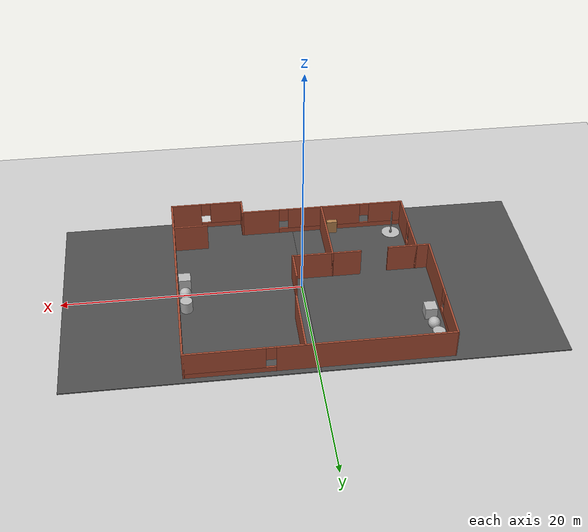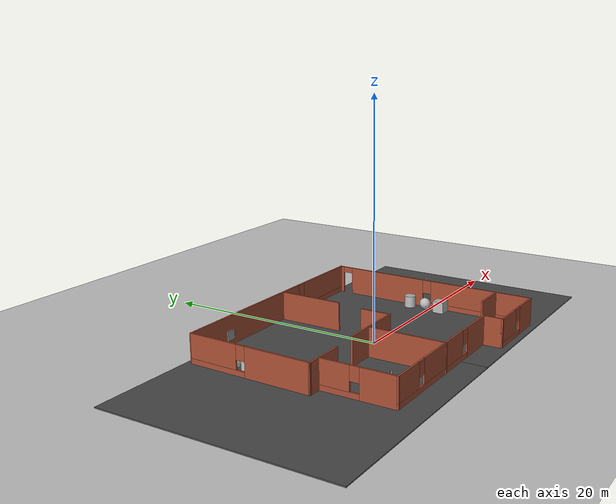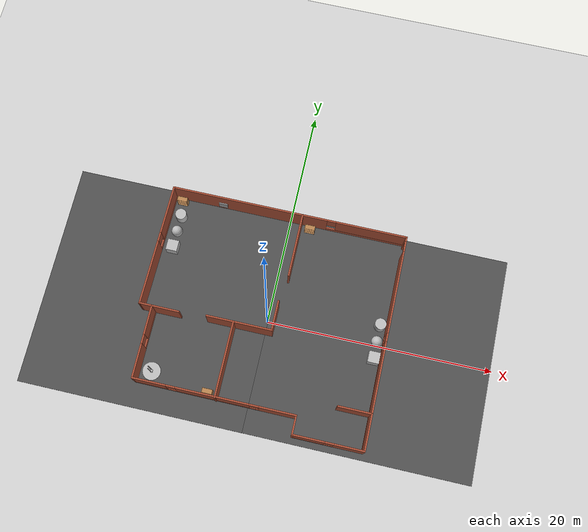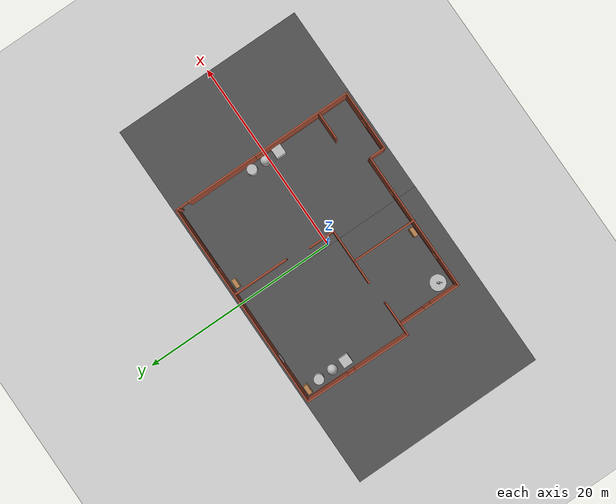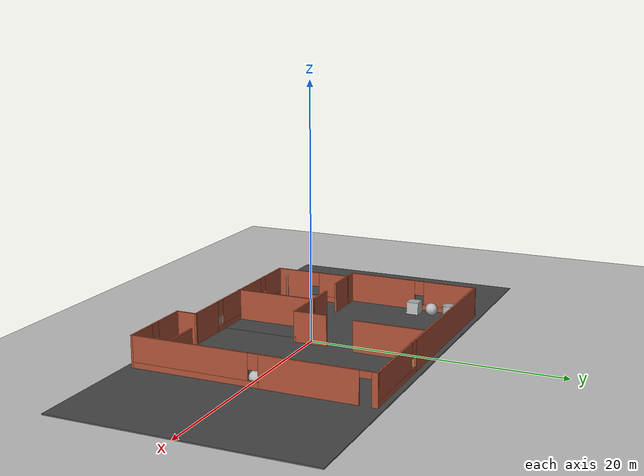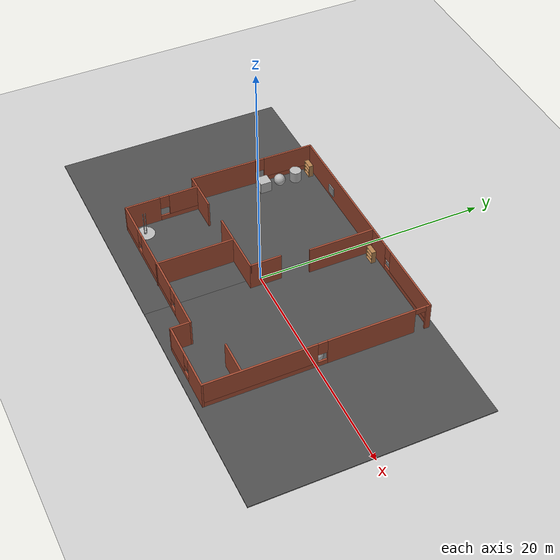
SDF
<sdf version="1.6">
 <world name="default">
  <light name="sun" type="directional">
   <pose>0 0 15 0 -0 0</pose>
   <diffuse>1 1 1 1</diffuse>
   <specular>0.1 0.1 0.1 1</specular>
   <attenuation>
    <range>1000</range>
    <constant>0.9</constant>
    <linear>0.01</linear>
    <quadratic>0.001</quadratic>
   </attenuation>
   <direction>-0.5 0.5 -1</direction>
  </light>
  <model name="ground_plane">
   <static>1</static>
   <link name="link">
    <collision name="collision">
     <geometry><plane><normal>0 0 1</normal><size>100 100</size></plane></geometry>
     <surface><friction><ode><mu>100</mu><mu2>50</mu2></ode></friction></surface>
    </collision>
    <visual name="visual">
     <cast_shadows>0</cast_shadows>
     <geometry><plane><normal>0 0 1</normal><size>100 100</size></plane></geometry>
     <material>
      <script><uri>file://media/materials/scripts/gazebo.material</uri><name>Gazebo/Grey</name></script>
     </material>
    </visual>
   </link>
  </model>
  <gravity>0 0 -9.8</gravity>
  <magnetic_field>6e-06 2.3e-05 -4.2e-05</magnetic_field>
  <atmosphere type="adiabatic"/>
  <physics name="default_physics" default="0" type="ode">
   <max_step_size>0.001</max_step_size>
   <real_time_factor>1</real_time_factor>
   <real_time_update_rate>1000</real_time_update_rate>
  </physics>
  <scene><ambient>0.4 0.4 0.4 1</ambient><background>0.7 0.7 0.7 1</background><shadows>1</shadows></scene>
  <spherical_coordinates>
   <surface_model>EARTH_WGS84</surface_model>
   <latitude_deg>0</latitude_deg>
   <longitude_deg>0</longitude_deg>
   <elevation>0</elevation>
   <heading_deg>0</heading_deg>
  </spherical_coordinates>
  <model name="model_house2">
   <pose>-0.306793 0.18905 0 0 -0 0</pose>
   <link name="Wall_0">
    <pose>0.100682 9.42432 0 0 -0 0</pose>
    <visual name="Wall_0_Visual_0">
     <pose>-3.59388 0 1.25 0 -0 0</pose>
     <geometry><box><size>14.0622 0.15 2.5</size></box></geometry>
     <material>
      <script><uri>file://media/materials/scripts/gazebo.material</uri><name>Gazebo/Bricks</name></script>
      <ambient>1 1 1 1</ambient>
     </material>
    </visual>
    <collision name="Wall_0_Collision_0">
     <geometry><box><size>14.0622 0.15 2.5</size></box></geometry>
     <pose>-3.59388 0 1.25 0 -0 0</pose>
    </collision>
    <visual name="Wall_0_Visual_1">
     <pose>7.03112 0 0.25 0 -0 0</pose>
     <geometry><box><size>7.18776 0.15 0.5</size></box></geometry>
     <material>
      <script><uri>file://media/materials/scripts/gazebo.material</uri><name>Gazebo/Bricks</name></script>
      <ambient>1 1 1 1</ambient>
     </material>
    </visual>
    <collision name="Wall_0_Collision_1">
     <geometry><box><size>7.18776 0.15 0.5</size></box></geometry>
     <pose>7.03112 0 0.25 0 -0 0</pose>
    </collision>
    <visual name="Wall_0_Visual_2">
     <pose>7.43112 0 1.5 0 -0 0</pose>
     <geometry><box><size>6.38776 0.15 2</size></box></geometry>
     <material>
      <script><uri>file://media/materials/scripts/gazebo.material</uri><name>Gazebo/Bricks</name></script>
      <ambient>1 1 1 1</ambient>
     </material>
    </visual>
    <collision name="Wall_0_Collision_2">
     <geometry><box><size>6.38776 0.15 2</size></box></geometry>
     <pose>7.43112 0 1.5 0 -0 0</pose>
    </collision>
    <visual name="Wall_0_Visual_3">
     <pose>3.83724 0 1.9 0 -0 0</pose>
     <geometry><box><size>0.8 0.15 1.2</size></box></geometry>
     <material>
      <script><uri>file://media/materials/scripts/gazebo.material</uri><name>Gazebo/Bricks</name></script>
      <ambient>1 1 1 1</ambient>
     </material>
    </visual>
    <collision name="Wall_0_Collision_3">
     <geometry><box><size>0.8 0.15 1.2</size></box></geometry>
     <pose>3.83724 0 1.9 0 -0 0</pose>
    </collision>
   </link>
   <link name="Wall_1">
    <pose>10.6507 -0.000681 0 0 0 -1.5708</pose>
    <visual name="Wall_1_Visual_0">
     <pose>-9.27115 0 1.25 0 -0 0</pose>
     <geometry><box><size>0.457701 0.15 2.5</size></box></geometry>
     <material>
      <script><uri>file://media/materials/scripts/gazebo.material</uri><name>Gazebo/Bricks</name></script>
      <ambient>1 1 1 1</ambient>
     </material>
    </visual>
    <collision name="Wall_1_Collision_0">
     <geometry><box><size>0.457701 0.15 2.5</size></box></geometry>
     <pose>-9.27115 0 1.25 0 -0 0</pose>
    </collision>
    <visual name="Wall_1_Visual_1">
     <pose>-4.42241 0 1.25 0 -0 0</pose>
     <geometry><box><size>7.43977 0.15 2.5</size></box></geometry>
     <material>
      <script><uri>file://media/materials/scripts/gazebo.material</uri><name>Gazebo/Bricks</name></script>
      <ambient>1 1 1 1</ambient>
     </material>
    </visual>
    <collision name="Wall_1_Collision_1">
     <geometry><box><size>7.43977 0.15 2.5</size></box></geometry>
     <pose>-4.42241 0 1.25 0 -0 0</pose>
    </collision>
    <visual name="Wall_1_Visual_2">
     <pose>4.39874 0 0.25 0 -0 0</pose>
     <geometry><box><size>10.2025 0.15 0.5</size></box></geometry>
     <material>
      <script><uri>file://media/materials/scripts/gazebo.material</uri><name>Gazebo/Bricks</name></script>
      <ambient>1 1 1 1</ambient>
     </material>
    </visual>
    <collision name="Wall_1_Collision_2">
     <geometry><box><size>10.2025 0.15 0.5</size></box></geometry>
     <pose>4.39874 0 0.25 0 -0 0</pose>
    </collision>
    <visual name="Wall_1_Visual_3">
     <pose>4.79874 0 1.5 0 -0 0</pose>
     <geometry><box><size>9.40253 0.15 2</size></box></geometry>
     <material>
      <script><uri>file://media/materials/scripts/gazebo.material</uri><name>Gazebo/Bricks</name></script>
      <ambient>1 1 1 1</ambient>
     </material>
    </visual>
    <collision name="Wall_1_Collision_3">
     <geometry><box><size>9.40253 0.15 2</size></box></geometry>
     <pose>4.79874 0 1.5 0 -0 0</pose>
    </collision>
    <visual name="Wall_1_Visual_4">
     <pose>-0.302527 0 1.9 0 -0 0</pose>
     <geometry><box><size>0.8 0.15 1.2</size></box></geometry>
     <material>
      <script><uri>file://media/materials/scripts/gazebo.material</uri><name>Gazebo/Bricks</name></script>
      <ambient>1 1 1 1</ambient>
     </material>
    </visual>
    <collision name="Wall_1_Collision_4">
     <geometry><box><size>0.8 0.15 1.2</size></box></geometry>
     <pose>-0.302527 0 1.9 0 -0 0</pose>
    </collision>
    <visual name="Wall_1_Visual_5">
     <pose>-8.5923 0 2.25 0 -0 0</pose>
     <geometry><box><size>0.9 0.15 0.5</size></box></geometry>
     <material>
      <script><uri>file://media/materials/scripts/gazebo.material</uri><name>Gazebo/Bricks</name></script>
      <ambient>1 1 1 1</ambient>
     </material>
    </visual>
    <collision name="Wall_1_Collision_5">
     <geometry><box><size>0.9 0.15 0.5</size></box></geometry>
     <pose>-8.5923 0 2.25 0 -0 0</pose>
    </collision>
   </link>
   <link name="Wall_10">
    <collision name="Wall_10_Collision">
     <geometry><box><size>3.5 0.15 2.5</size></box></geometry>
     <pose>0 0 1.25 0 -0 0</pose>
    </collision>
    <visual name="Wall_10_Visual">
     <pose>0 0 1.25 0 -0 0</pose>
     <geometry><box><size>3.5 0.15 2.5</size></box></geometry>
     <material>
      <script><uri>file://media/materials/scripts/gazebo.material</uri><name>Gazebo/Bricks</name></script>
      <ambient>1 1 1 1</ambient>
     </material>
    </visual>
    <pose>-0.724867 -1.27738 0 0 -0 0</pose>
   </link>
   <link name="Wall_11">
    <collision name="Wall_11_Collision">
     <geometry><box><size>2.75 0.15 2.5</size></box></geometry>
     <pose>0 0 1.25 0 -0 0</pose>
    </collision>
    <visual name="Wall_11_Visual">
     <pose>0 0 1.25 0 -0 0</pose>
     <geometry><box><size>2.75 0.15 2.5</size></box></geometry>
     <material>
      <script><uri>file://media/materials/scripts/gazebo.material</uri><name>Gazebo/Bricks</name></script>
      <ambient>1 1 1 1</ambient>
     </material>
    </visual>
    <pose>0.950133 0.022624 0 0 -0 1.5708</pose>
   </link>
   <link name="Wall_13">
    <collision name="Wall_13_Collision">
     <geometry><box><size>2.5 0.15 2.5</size></box></geometry>
     <pose>0 0 1.25 0 -0 0</pose>
    </collision>
    <visual name="Wall_13_Visual">
     <pose>0 0 1.25 0 -0 0</pose>
     <geometry><box><size>2.5 0.15 2.5</size></box></geometry>
     <material>
      <script><uri>file://media/materials/scripts/gazebo.material</uri><name>Gazebo/Bricks</name></script>
      <ambient>1 1 1 1</ambient>
     </material>
    </visual>
    <pose>-3.57487 -1.27738 0 0 -0 3.14159</pose>
   </link>
   <link name="Wall_15">
    <collision name="Wall_15_Collision">
     <geometry><box><size>2.5 0.15 2.5</size></box></geometry>
     <pose>0 0 1.25 0 -0 0</pose>
    </collision>
    <visual name="Wall_15_Visual">
     <pose>0 0 1.25 0 -0 0</pose>
     <geometry><box><size>2.5 0.15 2.5</size></box></geometry>
     <material>
      <script><uri>file://media/materials/scripts/gazebo.material</uri><name>Gazebo/Bricks</name></script>
      <ambient>1 1 1 1</ambient>
     </material>
    </visual>
    <pose>-8.37432 -1.47568 0 0 -0 0</pose>
   </link>
   <link name="Wall_17">
    <collision name="Wall_17_Collision">
     <geometry><box><size>3 0.15 2.5</size></box></geometry>
     <pose>0 0 1.25 0 -0 0</pose>
    </collision>
    <visual name="Wall_17_Visual">
     <pose>0 0 1.25 0 -0 0</pose>
     <geometry><box><size>3 0.15 2.5</size></box></geometry>
     <material>
      <script><uri>file://media/materials/scripts/gazebo.material</uri><name>Gazebo/Bricks</name></script>
      <ambient>1 1 1 1</ambient>
     </material>
    </visual>
    <pose>9.2208 -6.3045 0 0 -0 3.14159</pose>
   </link>
   <link name="Wall_19">
    <collision name="Wall_19_Collision">
     <geometry><box><size>5.75 0.15 2.5</size></box></geometry>
     <pose>0 0 1.25 0 -0 0</pose>
    </collision>
    <visual name="Wall_19_Visual">
     <pose>0 0 1.25 0 -0 0</pose>
     <geometry><box><size>5.75 0.15 2.5</size></box></geometry>
     <material>
      <script><uri>file://media/materials/scripts/gazebo.material</uri><name>Gazebo/Bricks</name></script>
      <ambient>1 1 1 1</ambient>
     </material>
    </visual>
    <pose>1.30103 6.57806 0 0 0 -1.5708</pose>
   </link>
   <link name="Wall_2">
    <pose>7.60068 -9.42568 0 0 -0 3.14159</pose>
    <visual name="Wall_2_Visual_0">
     <pose>-1.80742 0 1.25 0 -0 0</pose>
     <geometry><box><size>2.63516 0.15 2.5</size></box></geometry>
     <material>
      <script><uri>file://media/materials/scripts/gazebo.material</uri><name>Gazebo/Bricks</name></script>
      <ambient>1 1 1 1</ambient>
     </material>
    </visual>
    <collision name="Wall_2_Collision_0">
     <geometry><box><size>2.63516 0.15 2.5</size></box></geometry>
     <pose>-1.80742 0 1.25 0 -0 0</pose>
    </collision>
    <visual name="Wall_2_Visual_1">
     <pose>1.31758 0 0.25 0 -0 0</pose>
     <geometry><box><size>3.61484 0.15 0.5</size></box></geometry>
     <material>
      <script><uri>file://media/materials/scripts/gazebo.material</uri><name>Gazebo/Bricks</name></script>
      <ambient>1 1 1 1</ambient>
     </material>
    </visual>
    <collision name="Wall_2_Collision_1">
     <geometry><box><size>3.61484 0.15 0.5</size></box></geometry>
     <pose>1.31758 0 0.25 0 -0 0</pose>
    </collision>
    <visual name="Wall_2_Visual_2">
     <pose>1.71758 0 1.5 0 -0 0</pose>
     <geometry><box><size>2.81484 0.15 2</size></box></geometry>
     <material>
      <script><uri>file://media/materials/scripts/gazebo.material</uri><name>Gazebo/Bricks</name></script>
      <ambient>1 1 1 1</ambient>
     </material>
    </visual>
    <collision name="Wall_2_Collision_2">
     <geometry><box><size>2.81484 0.15 2</size></box></geometry>
     <pose>1.71758 0 1.5 0 -0 0</pose>
    </collision>
    <visual name="Wall_2_Visual_3">
     <pose>-0.089836 0 1.9 0 -0 0</pose>
     <geometry><box><size>0.8 0.15 1.2</size></box></geometry>
     <material>
      <script><uri>file://media/materials/scripts/gazebo.material</uri><name>Gazebo/Bricks</name></script>
      <ambient>1 1 1 1</ambient>
     </material>
    </visual>
    <collision name="Wall_2_Collision_3">
     <geometry><box><size>0.8 0.15 1.2</size></box></geometry>
     <pose>-0.089836 0 1.9 0 -0 0</pose>
    </collision>
   </link>
   <link name="Wall_3">
    <collision name="Wall_3_Collision">
     <geometry><box><size>1.75 0.15 2.5</size></box></geometry>
     <pose>0 0 1.25 0 -0 0</pose>
    </collision>
    <visual name="Wall_3_Visual">
     <pose>0 0 1.25 0 -0 0</pose>
     <geometry><box><size>1.75 0.15 2.5</size></box></geometry>
     <material>
      <script><uri>file://media/materials/scripts/gazebo.material</uri><name>Gazebo/Bricks</name></script>
      <ambient>1 1 1 1</ambient>
     </material>
    </visual>
    <pose>4.55068 -8.62568 0 0 -0 1.5708</pose>
   </link>
   <link name="Wall_4">
    <pose>-2.49932 -7.82568 0 0 -0 3.14159</pose>
    <visual name="Wall_4_Visual_0">
     <pose>-5.47919 0 1.25 0 -0 0</pose>
     <geometry><box><size>3.29162 0.15 2.5</size></box></geometry>
     <material>
      <script><uri>file://media/materials/scripts/gazebo.material</uri><name>Gazebo/Bricks</name></script>
      <ambient>1 1 1 1</ambient>
     </material>
    </visual>
    <collision name="Wall_4_Collision_0">
     <geometry><box><size>3.29162 0.15 2.5</size></box></geometry>
     <pose>-5.47919 0 1.25 0 -0 0</pose>
    </collision>
    <visual name="Wall_4_Visual_1">
     <pose>1.64581 0 0.25 0 -0 0</pose>
     <geometry><box><size>10.9584 0.15 0.5</size></box></geometry>
     <material>
      <script><uri>file://media/materials/scripts/gazebo.material</uri><name>Gazebo/Bricks</name></script>
      <ambient>1 1 1 1</ambient>
     </material>
    </visual>
    <collision name="Wall_4_Collision_1">
     <geometry><box><size>10.9584 0.15 0.5</size></box></geometry>
     <pose>1.64581 0 0.25 0 -0 0</pose>
    </collision>
    <visual name="Wall_4_Visual_2">
     <pose>0.157642 0 1.5 0 -0 0</pose>
     <geometry><box><size>6.38205 0.15 2</size></box></geometry>
     <material>
      <script><uri>file://media/materials/scripts/gazebo.material</uri><name>Gazebo/Bricks</name></script>
      <ambient>1 1 1 1</ambient>
     </material>
    </visual>
    <collision name="Wall_4_Collision_2">
     <geometry><box><size>6.38205 0.15 2</size></box></geometry>
     <pose>0.157642 0 1.5 0 -0 0</pose>
    </collision>
    <visual name="Wall_4_Visual_3">
     <pose>5.63683 0 1.5 0 -0 0</pose>
     <geometry><box><size>2.97633 0.15 2</size></box></geometry>
     <material>
      <script><uri>file://media/materials/scripts/gazebo.material</uri><name>Gazebo/Bricks</name></script>
      <ambient>1 1 1 1</ambient>
     </material>
    </visual>
    <collision name="Wall_4_Collision_3">
     <geometry><box><size>2.97633 0.15 2</size></box></geometry>
     <pose>5.63683 0 1.5 0 -0 0</pose>
    </collision>
    <visual name="Wall_4_Visual_4">
     <pose>-3.43338 0 1.9 0 -0 0</pose>
     <geometry><box><size>0.8 0.15 1.2</size></box></geometry>
     <material>
      <script><uri>file://media/materials/scripts/gazebo.material</uri><name>Gazebo/Bricks</name></script>
      <ambient>1 1 1 1</ambient>
     </material>
    </visual>
    <collision name="Wall_4_Collision_4">
     <geometry><box><size>0.8 0.15 1.2</size></box></geometry>
     <pose>-3.43338 0 1.9 0 -0 0</pose>
    </collision>
    <visual name="Wall_4_Visual_5">
     <pose>3.74867 0 1.9 0 -0 0</pose>
     <geometry><box><size>0.8 0.15 1.2</size></box></geometry>
     <material>
      <script><uri>file://media/materials/scripts/gazebo.material</uri><name>Gazebo/Bricks</name></script>
      <ambient>1 1 1 1</ambient>
     </material>
    </visual>
    <collision name="Wall_4_Collision_5">
     <geometry><box><size>0.8 0.15 1.2</size></box></geometry>
     <pose>3.74867 0 1.9 0 -0 0</pose>
    </collision>
   </link>
   <link name="Wall_5">
    <pose>-9.54932 -4.65068 0 0 -0 1.5708</pose>
    <visual name="Wall_5_Visual_0">
     <pose>-1.72668 0 1.25 0 -0 0</pose>
     <geometry><box><size>3.04664 0.15 2.5</size></box></geometry>
     <material>
      <script><uri>file://media/materials/scripts/gazebo.material</uri><name>Gazebo/Bricks</name></script>
      <ambient>1 1 1 1</ambient>
     </material>
    </visual>
    <collision name="Wall_5_Collision_0">
     <geometry><box><size>3.04664 0.15 2.5</size></box></geometry>
     <pose>-1.72668 0 1.25 0 -0 0</pose>
    </collision>
    <visual name="Wall_5_Visual_1">
     <pose>1.52332 0 0.25 0 -0 0</pose>
     <geometry><box><size>3.45336 0.15 0.5</size></box></geometry>
     <material>
      <script><uri>file://media/materials/scripts/gazebo.material</uri><name>Gazebo/Bricks</name></script>
      <ambient>1 1 1 1</ambient>
     </material>
    </visual>
    <collision name="Wall_5_Collision_1">
     <geometry><box><size>3.45336 0.15 0.5</size></box></geometry>
     <pose>1.52332 0 0.25 0 -0 0</pose>
    </collision>
    <visual name="Wall_5_Visual_2">
     <pose>1.92332 0 1.5 0 -0 0</pose>
     <geometry><box><size>2.65336 0.15 2</size></box></geometry>
     <material>
      <script><uri>file://media/materials/scripts/gazebo.material</uri><name>Gazebo/Bricks</name></script>
      <ambient>1 1 1 1</ambient>
     </material>
    </visual>
    <collision name="Wall_5_Collision_2">
     <geometry><box><size>2.65336 0.15 2</size></box></geometry>
     <pose>1.92332 0 1.5 0 -0 0</pose>
    </collision>
    <visual name="Wall_5_Visual_3">
     <pose>0.196635 0 1.9 0 -0 0</pose>
     <geometry><box><size>0.8 0.15 1.2</size></box></geometry>
     <material>
      <script><uri>file://media/materials/scripts/gazebo.material</uri><name>Gazebo/Bricks</name></script>
      <ambient>1 1 1 1</ambient>
     </material>
    </visual>
    <collision name="Wall_5_Collision_3">
     <geometry><box><size>0.8 0.15 1.2</size></box></geometry>
     <pose>0.196635 0 1.9 0 -0 0</pose>
    </collision>
   </link>
   <link name="Wall_6">
    <collision name="Wall_6_Collision">
     <geometry><box><size>1.25 0.15 2.5</size></box></geometry>
     <pose>0 0 1.25 0 -0 0</pose>
    </collision>
    <visual name="Wall_6_Visual">
     <pose>0 0 1.25 0 -0 0</pose>
     <geometry><box><size>1.25 0.15 2.5</size></box></geometry>
     <material>
      <script><uri>file://media/materials/scripts/gazebo.material</uri><name>Gazebo/Bricks</name></script>
      <ambient>1 1 1 1</ambient>
     </material>
    </visual>
    <pose>-10.0993 -1.47568 0 0 -0 3.14159</pose>
   </link>
   <link name="Wall_7">
    <pose>-10.5493 3.97432 0 0 -0 1.55245</pose>
    <visual name="Wall_7_Visual_0">
     <pose>-2.6204 0 1.25 0 -0 0</pose>
     <geometry><box><size>5.81103 0.15 2.5</size></box></geometry>
     <material>
      <script><uri>file://media/materials/scripts/gazebo.material</uri><name>Gazebo/Bricks</name></script>
      <ambient>1 1 1 1</ambient>
     </material>
    </visual>
    <collision name="Wall_7_Collision_0">
     <geometry><box><size>5.81103 0.15 2.5</size></box></geometry>
     <pose>-2.6204 0 1.25 0 -0 0</pose>
    </collision>
    <visual name="Wall_7_Visual_1">
     <pose>2.90552 0 0.25 0 -0 0</pose>
     <geometry><box><size>5.2408 0.15 0.5</size></box></geometry>
     <material>
      <script><uri>file://media/materials/scripts/gazebo.material</uri><name>Gazebo/Bricks</name></script>
      <ambient>1 1 1 1</ambient>
     </material>
    </visual>
    <collision name="Wall_7_Collision_1">
     <geometry><box><size>5.2408 0.15 0.5</size></box></geometry>
     <pose>2.90552 0 0.25 0 -0 0</pose>
    </collision>
    <visual name="Wall_7_Visual_2">
     <pose>3.30552 0 1.5 0 -0 0</pose>
     <geometry><box><size>4.4408 0.15 2</size></box></geometry>
     <material>
      <script><uri>file://media/materials/scripts/gazebo.material</uri><name>Gazebo/Bricks</name></script>
      <ambient>1 1 1 1</ambient>
     </material>
    </visual>
    <collision name="Wall_7_Collision_2">
     <geometry><box><size>4.4408 0.15 2</size></box></geometry>
     <pose>3.30552 0 1.5 0 -0 0</pose>
    </collision>
    <visual name="Wall_7_Visual_3">
     <pose>0.685117 0 1.9 0 -0 0</pose>
     <geometry><box><size>0.8 0.15 1.2</size></box></geometry>
     <material>
      <script><uri>file://media/materials/scripts/gazebo.material</uri><name>Gazebo/Bricks</name></script>
      <ambient>1 1 1 1</ambient>
     </material>
    </visual>
    <collision name="Wall_7_Collision_3">
     <geometry><box><size>0.8 0.15 1.2</size></box></geometry>
     <pose>0.685117 0 1.9 0 -0 0</pose>
    </collision>
   </link>
   <link name="Wall_9">
    <collision name="Wall_9_Collision">
     <geometry><box><size>6.75 0.15 2.5</size></box></geometry>
     <pose>0 0 1.25 0 -0 0</pose>
    </collision>
    <visual name="Wall_9_Visual">
     <pose>0 0 1.25 0 -0 0</pose>
     <geometry><box><size>6.75 0.15 2.5</size></box></geometry>
     <material>
      <script><uri>file://media/materials/scripts/gazebo.material</uri><name>Gazebo/Bricks</name></script>
      <ambient>1 1 1 1</ambient>
     </material>
    </visual>
    <pose>-2.39987 -4.57738 0 0 -0 1.5708</pose>
   </link>
   <link name="Window_1">
    <collision name="Window_1_Collision">
     <geometry><box><size>0.8 0.17 0.8</size></box></geometry>
     <pose>0 0 0.4 0 -0 0</pose>
    </collision>
    <visual name="Window_1_Visual">
     <pose>0 0 0.4 0 -0 0</pose>
     <geometry><box><size>0.8 0.17 0.8</size></box></geometry>
     <material>
      <script><uri>file://media/materials/scripts/gazebo.material</uri><name>Gazebo/Grey</name></script>
     </material>
    </visual>
    <pose>-5.96198 9.3318 0.5 0 -0 0</pose>
   </link>
   <static>1</static>
  </model>
  <model name="asphalt_plane">
   <static>1</static>
   <link name="link">
    <collision name="collision"><geometry><box><size>20 20 0.1</size></box></geometry></collision>
    <visual name="visual">
     <cast_shadows>0</cast_shadows>
     <geometry><box><size>20 20 0.1</size></box></geometry>
     <material>
      <script>
       <uri>model://asphalt_plane/materials/scripts</uri>
       <uri>model://asphalt_plane/materials/textures</uri>
       <name>vrc/asphalt</name>
      </script>
     </material>
    </visual>
   </link>
   <pose>-9.95909 0.126631 0 0 -0 0</pose>
  </model>
  <model name="asphalt_plane_0">
   <static>1</static>
   <link name="link">
    <collision name="collision"><geometry><box><size>20 20 0.1</size></box></geometry></collision>
    <visual name="visual">
     <cast_shadows>0</cast_shadows>
     <geometry><box><size>20 20 0.1</size></box></geometry>
     <material>
      <script>
       <uri>model://asphalt_plane/materials/scripts</uri>
       <uri>model://asphalt_plane/materials/textures</uri>
       <name>vrc/asphalt</name>
      </script>
     </material>
    </visual>
   </link>
   <pose>9.82977 0.136124 0 0 -0 0</pose>
  </model>
  <model name="bookshelf">
   <static>1</static>
   <link name="link">
    <inertial><mass>1</mass></inertial>
    <collision name="back">
     <pose>0 0.005 0.6 0 -0 0</pose>
     <geometry><box><size>0.9 0.01 1.2</size></box></geometry>
    </collision>
    <visual name="visual1">
     <pose>0 0.005 0.6 0 -0 0</pose>
     <geometry><box><size>0.9 0.01 1.2</size></box></geometry>
     <material>
      <script><uri>file://media/materials/scripts/gazebo.material</uri><name>Gazebo/Wood</name></script>
     </material>
    </visual>
    <collision name="left_side">
     <pose>0.45 -0.195 0.6 0 -0 0</pose>
     <geometry><box><size>0.02 0.4 1.2</size></box></geometry>
    </collision>
    <visual name="visual2">
     <pose>0.45 -0.195 0.6 0 -0 0</pose>
     <geometry><box><size>0.02 0.4 1.2</size></box></geometry>
     <material>
      <script><uri>file://media/materials/scripts/gazebo.material</uri><name>Gazebo/Wood</name></script>
     </material>
    </visual>
    <collision name="right_side">
     <pose>-0.45 -0.195 0.6 0 -0 0</pose>
     <geometry><box><size>0.02 0.4 1.2</size></box></geometry>
    </collision>
    <visual name="visual3">
     <pose>-0.45 -0.195 0.6 0 -0 0</pose>
     <geometry><box><size>0.02 0.4 1.2</size></box></geometry>
     <material>
      <script><uri>file://media/materials/scripts/gazebo.material</uri><name>Gazebo/Wood</name></script>
     </material>
    </visual>
    <collision name="bottom">
     <pose>0 -0.195 0.03 0 -0 0</pose>
     <geometry><box><size>0.88 0.4 0.06</size></box></geometry>
    </collision>
    <visual name="visual4">
     <pose>0 -0.195 0.03 0 -0 0</pose>
     <geometry><box><size>0.88 0.4 0.06</size></box></geometry>
     <material>
      <script><uri>file://media/materials/scripts/gazebo.material</uri><name>Gazebo/Wood</name></script>
     </material>
    </visual>
    <collision name="top">
     <pose>0 -0.195 1.19 0 -0 0</pose>
     <geometry><box><size>0.88 0.4 0.02</size></box></geometry>
    </collision>
    <visual name="visual5">
     <pose>0 -0.195 1.19 0 -0 0</pose>
     <geometry><box><size>0.88 0.4 0.02</size></box></geometry>
     <material>
      <script><uri>file://media/materials/scripts/gazebo.material</uri><name>Gazebo/Wood</name></script>
     </material>
    </visual>
    <collision name="low_shelf">
     <pose>0 -0.195 0.43 0 -0 0</pose>
     <geometry><box><size>0.88 0.4 0.02</size></box></geometry>
    </collision>
    <visual name="visual6">
     <pose>0 -0.195 0.43 0 -0 0</pose>
     <geometry><box><size>0.88 0.4 0.02</size></box></geometry>
     <material>
      <script><uri>file://media/materials/scripts/gazebo.material</uri><name>Gazebo/Wood</name></script>
     </material>
    </visual>
    <collision name="high_shelf">
     <pose>0 -0.195 0.8 0 -0 0</pose>
     <geometry><box><size>0.88 0.4 0.02</size></box></geometry>
    </collision>
    <visual name="visual7">
     <pose>0 -0.195 0.8 0 -0 0</pose>
     <geometry><box><size>0.88 0.4 0.02</size></box></geometry>
     <material>
      <script><uri>file://media/materials/scripts/gazebo.material</uri><name>Gazebo/Wood</name></script>
     </material>
    </visual>
   </link>
   <pose>-10.0052 9.33981 0 0 -0 0</pose>
  </model>
  <model name="bookshelf_0">
   <static>1</static>
   <link name="link">
    <inertial><mass>1</mass></inertial>
    <collision name="back">
     <pose>0 0.005 0.6 0 -0 0</pose>
     <geometry><box><size>0.9 0.01 1.2</size></box></geometry>
    </collision>
    <visual name="visual1">
     <pose>0 0.005 0.6 0 -0 0</pose>
     <geometry><box><size>0.9 0.01 1.2</size></box></geometry>
     <material>
      <script><uri>file://media/materials/scripts/gazebo.material</uri><name>Gazebo/Wood</name></script>
     </material>
    </visual>
    <collision name="left_side">
     <pose>0.45 -0.195 0.6 0 -0 0</pose>
     <geometry><box><size>0.02 0.4 1.2</size></box></geometry>
    </collision>
    <visual name="visual2">
     <pose>0.45 -0.195 0.6 0 -0 0</pose>
     <geometry><box><size>0.02 0.4 1.2</size></box></geometry>
     <material>
      <script><uri>file://media/materials/scripts/gazebo.material</uri><name>Gazebo/Wood</name></script>
     </material>
    </visual>
    <collision name="right_side">
     <pose>-0.45 -0.195 0.6 0 -0 0</pose>
     <geometry><box><size>0.02 0.4 1.2</size></box></geometry>
    </collision>
    <visual name="visual3">
     <pose>-0.45 -0.195 0.6 0 -0 0</pose>
     <geometry><box><size>0.02 0.4 1.2</size></box></geometry>
     <material>
      <script><uri>file://media/materials/scripts/gazebo.material</uri><name>Gazebo/Wood</name></script>
     </material>
    </visual>
    <collision name="bottom">
     <pose>0 -0.195 0.03 0 -0 0</pose>
     <geometry><box><size>0.88 0.4 0.06</size></box></geometry>
    </collision>
    <visual name="visual4">
     <pose>0 -0.195 0.03 0 -0 0</pose>
     <geometry><box><size>0.88 0.4 0.06</size></box></geometry>
     <material>
      <script><uri>file://media/materials/scripts/gazebo.material</uri><name>Gazebo/Wood</name></script>
     </material>
    </visual>
    <collision name="top">
     <pose>0 -0.195 1.19 0 -0 0</pose>
     <geometry><box><size>0.88 0.4 0.02</size></box></geometry>
    </collision>
    <visual name="visual5">
     <pose>0 -0.195 1.19 0 -0 0</pose>
     <geometry><box><size>0.88 0.4 0.02</size></box></geometry>
     <material>
      <script><uri>file://media/materials/scripts/gazebo.material</uri><name>Gazebo/Wood</name></script>
     </material>
    </visual>
    <collision name="low_shelf">
     <pose>0 -0.195 0.43 0 -0 0</pose>
     <geometry><box><size>0.88 0.4 0.02</size></box></geometry>
    </collision>
    <visual name="visual6">
     <pose>0 -0.195 0.43 0 -0 0</pose>
     <geometry><box><size>0.88 0.4 0.02</size></box></geometry>
     <material>
      <script><uri>file://media/materials/scripts/gazebo.material</uri><name>Gazebo/Wood</name></script>
     </material>
    </visual>
    <collision name="high_shelf">
     <pose>0 -0.195 0.8 0 -0 0</pose>
     <geometry><box><size>0.88 0.4 0.02</size></box></geometry>
    </collision>
    <visual name="visual7">
     <pose>0 -0.195 0.8 0 -0 0</pose>
     <geometry><box><size>0.88 0.4 0.02</size></box></geometry>
     <material>
      <script><uri>file://media/materials/scripts/gazebo.material</uri><name>Gazebo/Wood</name></script>
     </material>
    </visual>
   </link>
   <pose>1.83391 9.26186 0 0 -0 0</pose>
  </model>
  <model name="bookshelf_1">
   <static>1</static>
   <link name="link">
    <inertial><mass>1</mass></inertial>
    <collision name="back">
     <pose>0 0.005 0.6 0 -0 0</pose>
     <geometry><box><size>0.9 0.01 1.2</size></box></geometry>
    </collision>
    <visual name="visual1">
     <pose>0 0.005 0.6 0 -0 0</pose>
     <geometry><box><size>0.9 0.01 1.2</size></box></geometry>
     <material>
      <script><uri>file://media/materials/scripts/gazebo.material</uri><name>Gazebo/Wood</name></script>
     </material>
    </visual>
    <collision name="left_side">
     <pose>0.45 -0.195 0.6 0 -0 0</pose>
     <geometry><box><size>0.02 0.4 1.2</size></box></geometry>
    </collision>
    <visual name="visual2">
     <pose>0.45 -0.195 0.6 0 -0 0</pose>
     <geometry><box><size>0.02 0.4 1.2</size></box></geometry>
     <material>
      <script><uri>file://media/materials/scripts/gazebo.material</uri><name>Gazebo/Wood</name></script>
     </material>
    </visual>
    <collision name="right_side">
     <pose>-0.45 -0.195 0.6 0 -0 0</pose>
     <geometry><box><size>0.02 0.4 1.2</size></box></geometry>
    </collision>
    <visual name="visual3">
     <pose>-0.45 -0.195 0.6 0 -0 0</pose>
     <geometry><box><size>0.02 0.4 1.2</size></box></geometry>
     <material>
      <script><uri>file://media/materials/scripts/gazebo.material</uri><name>Gazebo/Wood</name></script>
     </material>
    </visual>
    <collision name="bottom">
     <pose>0 -0.195 0.03 0 -0 0</pose>
     <geometry><box><size>0.88 0.4 0.06</size></box></geometry>
    </collision>
    <visual name="visual4">
     <pose>0 -0.195 0.03 0 -0 0</pose>
     <geometry><box><size>0.88 0.4 0.06</size></box></geometry>
     <material>
      <script><uri>file://media/materials/scripts/gazebo.material</uri><name>Gazebo/Wood</name></script>
     </material>
    </visual>
    <collision name="top">
     <pose>0 -0.195 1.19 0 -0 0</pose>
     <geometry><box><size>0.88 0.4 0.02</size></box></geometry>
    </collision>
    <visual name="visual5">
     <pose>0 -0.195 1.19 0 -0 0</pose>
     <geometry><box><size>0.88 0.4 0.02</size></box></geometry>
     <material>
      <script><uri>file://media/materials/scripts/gazebo.material</uri><name>Gazebo/Wood</name></script>
     </material>
    </visual>
    <collision name="low_shelf">
     <pose>0 -0.195 0.43 0 -0 0</pose>
     <geometry><box><size>0.88 0.4 0.02</size></box></geometry>
    </collision>
    <visual name="visual6">
     <pose>0 -0.195 0.43 0 -0 0</pose>
     <geometry><box><size>0.88 0.4 0.02</size></box></geometry>
     <material>
      <script><uri>file://media/materials/scripts/gazebo.material</uri><name>Gazebo/Wood</name></script>
     </material>
    </visual>
    <collision name="high_shelf">
     <pose>0 -0.195 0.8 0 -0 0</pose>
     <geometry><box><size>0.88 0.4 0.02</size></box></geometry>
    </collision>
    <visual name="visual7">
     <pose>0 -0.195 0.8 0 -0 0</pose>
     <geometry><box><size>0.88 0.4 0.02</size></box></geometry>
     <material>
      <script><uri>file://media/materials/scripts/gazebo.material</uri><name>Gazebo/Wood</name></script>
     </material>
    </visual>
   </link>
   <pose>-3.60201 -6.98744 0 0 -0 0</pose>
  </model>
  <model name="mass_on_rails">
   <link name="base">
    <inertial>
     <mass>100</mass>
     <inertia><ixx>1</ixx><ixy>0</ixy><ixz>0</ixz><iyy>1</iyy><iyz>0</iyz><izz>1</izz></inertia>
    </inertial>
    <visual name="vis_base">
     <pose>0 0 0.01 0 -0 0</pose>
     <geometry><cylinder><radius>0.8</radius><length>0.01</length></cylinder></geometry>
    </visual>
    <collision name="col_base">
     <pose>0 0 0.01 0 -0 0</pose>
     <geometry><cylinder><radius>0.8</radius><length>0.01</length></cylinder></geometry>
    </collision>
    <visual name="vis_rail1">
     <pose>0 0.1 1.1 0 -0 0</pose>
     <geometry><box><size>0.05 0.05 2.2</size></box></geometry>
    </visual>
    <collision name="col_rail1">
     <pose>0 0.1 1.1 0 -0 0</pose>
     <geometry><box><size>0.05 0.05 2.2</size></box></geometry>
    </collision>
    <visual name="vis_rail2">
     <pose>0 -0.1 1.1 0 -0 0</pose>
     <geometry><box><size>0.05 0.05 2.2</size></box></geometry>
    </visual>
    <collision name="col_rail2">
     <pose>0 -0.1 1.1 0 -0 0</pose>
     <geometry><box><size>0.05 0.05 2.2</size></box></geometry>
    </collision>
   </link>
   <link name="mass">
    <inertial>
     <mass>0.1</mass>
     <pose>0 0 0.1 0 -0 0</pose>
     <inertia><ixx>0.00067</ixx><ixy>0</ixy><ixz>0</ixz><iyy>0.00067</iyy><iyz>0</iyz><izz>0.00067</izz></inertia>
    </inertial>
    <visual name="visual">
     <pose>0 0 0.1 0 -0 0</pose>
     <geometry><box><size>0.2 0.2 0.2</size></box></geometry>
    </visual>
    <collision name="collision">
     <pose>0 0 0.1 0 -0 0</pose>
     <geometry><box><size>0.2 0.2 0.2</size></box></geometry>
    </collision>
   </link>
   <joint name="joint" type="prismatic">
    <parent>base</parent>
    <child>mass</child>
    <axis>
     <dynamics>
      <damping>0.01</damping>
      <friction>0.01</friction>
      <spring_reference>0</spring_reference>
      <spring_stiffness>0</spring_stiffness>
     </dynamics>
     <xyz>0 0 1</xyz>
     <limit><lower>0</lower><upper>2</upper></limit>
     <use_parent_model_frame>0</use_parent_model_frame>
    </axis>
   </joint>
   <pose>-8.82957 -6.46838 0.05 0 0 -7.4e-05</pose>
  </model>
  <model name="textured_shapes">
   <pose>9.71237 0.34618 0.55 0 -0 0</pose>
   <link name="box">
    <pose>0 -1.5 0 0 -0 0</pose>
    <collision name="collision"><geometry><box><size>1 1 1</size></box></geometry></collision>
    <visual name="visual">
     <geometry><box><size>1 1 1</size></box></geometry>
     <material>
      <script>
       <uri>model://textured_shapes/materials/scripts</uri>
       <uri>model://textured_shapes/materials/textures</uri>
       <name>TexturedShape/Squares</name>
      </script>
     </material>
    </visual>
    <inertial>
     <inertia><ixx>1</ixx><ixy>0</ixy><ixz>0</ixz><iyy>1</iyy><iyz>0</iyz><izz>1</izz></inertia>
     <mass>1</mass>
    </inertial>
   </link>
   <link name="sphere">
    <collision name="collision"><geometry><sphere><radius>0.5</radius></sphere></geometry></collision>
    <visual name="visual">
     <geometry><sphere><radius>0.5</radius></sphere></geometry>
     <material>
      <script>
       <uri>model://textured_shapes/materials/scripts</uri>
       <uri>model://textured_shapes/materials/textures</uri>
       <name>TexturedShape/Squares</name>
      </script>
     </material>
    </visual>
    <inertial>
     <inertia><ixx>1</ixx><ixy>0</ixy><ixz>0</ixz><iyy>1</iyy><iyz>0</iyz><izz>1</izz></inertia>
     <mass>1</mass>
    </inertial>
   </link>
   <link name="cylinder">
    <pose>0 1.5 0 0 -0 0</pose>
    <collision name="collision">
     <geometry><cylinder><radius>0.5</radius><length>1</length></cylinder></geometry>
    </collision>
    <visual name="visual">
     <geometry><cylinder><radius>0.5</radius><length>1</length></cylinder></geometry>
     <material>
      <script>
       <uri>model://textured_shapes/materials/scripts</uri>
       <uri>model://textured_shapes/materials/textures</uri>
       <name>TexturedShape/Squares</name>
      </script>
     </material>
    </visual>
    <inertial>
     <inertia><ixx>1</ixx><ixy>0</ixy><ixz>0</ixz><iyy>1</iyy><iyz>0</iyz><izz>1</izz></inertia>
     <mass>1</mass>
    </inertial>
   </link>
  </model>
  <model name="textured_shapes_0">
   <pose>-9.81722 6.27225 0.55 0 -0 0</pose>
   <link name="box">
    <pose>0 -1.5 0 0 -0 0</pose>
    <collision name="collision"><geometry><box><size>1 1 1</size></box></geometry></collision>
    <visual name="visual">
     <geometry><box><size>1 1 1</size></box></geometry>
     <material>
      <script>
       <uri>model://textured_shapes/materials/scripts</uri>
       <uri>model://textured_shapes/materials/textures</uri>
       <name>TexturedShape/Squares</name>
      </script>
     </material>
    </visual>
    <inertial>
     <inertia><ixx>1</ixx><ixy>0</ixy><ixz>0</ixz><iyy>1</iyy><iyz>0</iyz><izz>1</izz></inertia>
     <mass>1</mass>
    </inertial>
   </link>
   <link name="sphere">
    <collision name="collision"><geometry><sphere><radius>0.5</radius></sphere></geometry></collision>
    <visual name="visual">
     <geometry><sphere><radius>0.5</radius></sphere></geometry>
     <material>
      <script>
       <uri>model://textured_shapes/materials/scripts</uri>
       <uri>model://textured_shapes/materials/textures</uri>
       <name>TexturedShape/Squares</name>
      </script>
     </material>
    </visual>
    <inertial>
     <inertia><ixx>1</ixx><ixy>0</ixy><ixz>0</ixz><iyy>1</iyy><iyz>0</iyz><izz>1</izz></inertia>
     <mass>1</mass>
    </inertial>
   </link>
   <link name="cylinder">
    <pose>0 1.5 0 0 -0 0</pose>
    <collision name="collision">
     <geometry><cylinder><radius>0.5</radius><length>1</length></cylinder></geometry>
    </collision>
    <visual name="visual">
     <geometry><cylinder><radius>0.5</radius><length>1</length></cylinder></geometry>
     <material>
      <script>
       <uri>model://textured_shapes/materials/scripts</uri>
       <uri>model://textured_shapes/materials/textures</uri>
       <name>TexturedShape/Squares</name>
      </script>
     </material>
    </visual>
    <inertial>
     <inertia><ixx>1</ixx><ixy>0</ixy><ixz>0</ixz><iyy>1</iyy><iyz>0</iyz><izz>1</izz></inertia>
     <mass>1</mass>
    </inertial>
   </link>
  </model>
 </world>
</sdf>
